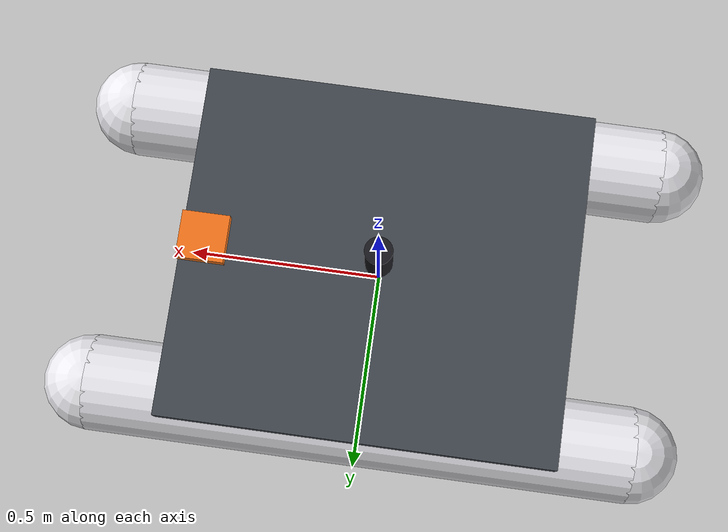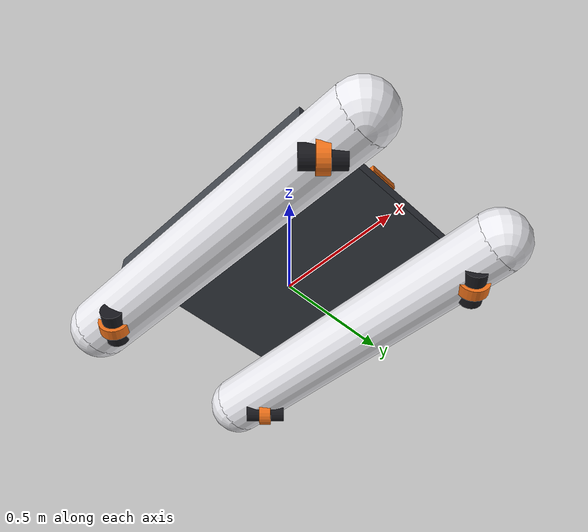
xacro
<?xml version="1.0"?>
<robot xmlns:xacro="http://www.ros.org/wiki/xacro" name="roboboat">

  <!-- Off by default: rendering a camera costs far more than the lidar, and
       nothing in the navigation stack consumes it. Turn it on only when you
       want footage of a run as Gazebo draws it. -->
  <xacro:arg name="chase_camera" default="false"/>

  <!-- ============================ parameters ============================ -->
  <xacro:property name="hull_length"      value="1.40"/>
  <xacro:property name="hull_radius"      value="0.125"/>
  <xacro:property name="hull_separation"  value="0.75"/>   <!-- y, centre-to-centre -->
  <xacro:property name="deck_length"      value="1.00"/>
  <xacro:property name="deck_width"       value="0.90"/>
  <xacro:property name="deck_thickness"   value="0.06"/>
  <xacro:property name="deck_z"           value="0.16"/>

  <xacro:property name="mast_height"      value="0.18"/>
  <xacro:property name="lidar_z"          value="0.35"/>
  <xacro:property name="imu_z"            value="0.20"/>
  <xacro:property name="gps_z"            value="0.40"/>

  <!-- Thruster mount geometry. Must match boat_params.yaml. -->
  <xacro:property name="thr_x"            value="0.55"/>
  <xacro:property name="thr_y"            value="0.40"/>
  <xacro:property name="thr_z"            value="-0.10"/>
  <xacro:property name="thr_len"          value="0.16"/>
  <xacro:property name="thr_radius"       value="0.045"/>

  <xacro:property name="mass"             value="35.0"/>
  <xacro:property name="ixx"              value="4.0"/>
  <xacro:property name="iyy"              value="6.0"/>
  <xacro:property name="izz"              value="9.0"/>

  <xacro:property name="pi_2"             value="1.5707963267948966"/>
  <xacro:property name="deg45"            value="0.7853981633974483"/>
  <xacro:property name="deg135"           value="2.356194490192345"/>

  <!-- ============================= materials ============================ -->
  <material name="hull_white"><color rgba="0.92 0.92 0.94 1.0"/></material>
  <material name="deck_grey"> <color rgba="0.25 0.27 0.30 1.0"/></material>
  <material name="accent">    <color rgba="0.95 0.45 0.10 1.0"/></material>
  <material name="dark">      <color rgba="0.10 0.10 0.12 1.0"/></material>

  <!-- ============================== macros ============================== -->
  <!-- One catamaran hull: capsule-ish (cylinder + two end caps as spheres). -->
  <xacro:macro name="hull" params="name y">
    <visual>
      <origin xyz="0 ${y} 0" rpy="0 ${pi_2} 0"/>
      <geometry><cylinder radius="${hull_radius}" length="${hull_length}"/></geometry>
      <material name="hull_white"/>
    </visual>
    <visual>
      <origin xyz="${hull_length/2} ${y} 0" rpy="0 0 0"/>
      <geometry><sphere radius="${hull_radius}"/></geometry>
      <material name="hull_white"/>
    </visual>
    <visual>
      <origin xyz="${-hull_length/2} ${y} 0" rpy="0 0 0"/>
      <geometry><sphere radius="${hull_radius}"/></geometry>
      <material name="hull_white"/>
    </visual>
  </xacro:macro>

  <!-- One thruster nacelle. 'ang' is the thrust-axis heading in the body
       frame: +x is forward, +y is port. -->
  <xacro:macro name="thruster_visual" params="name x y ang">
    <visual>
      <origin xyz="${x} ${y} ${thr_z}" rpy="0 ${pi_2} ${ang}"/>
      <geometry><cylinder radius="${thr_radius}" length="${thr_len}"/></geometry>
      <material name="dark"/>
    </visual>
    <visual>
      <origin xyz="${x} ${y} ${thr_z}" rpy="0 ${pi_2} ${ang}"/>
      <geometry><cylinder radius="${thr_radius*1.35}" length="${thr_len*0.3}"/></geometry>
      <material name="accent"/>
    </visual>
  </xacro:macro>

  <!-- A frame-only link: exists so robot_state_publisher emits TF for it.
       Tiny inertia keeps sdformat happy when the fixed joint is lumped. -->
  <xacro:macro name="frame_link" params="name xyz rpy:='0 0 0'">
    <link name="${name}">
      <inertial>
        <mass value="1e-5"/>
        <origin xyz="0 0 0"/>
        <inertia ixx="1e-8" ixy="0" ixz="0" iyy="1e-8" iyz="0" izz="1e-8"/>
      </inertial>
    </link>
    <joint name="${name}_joint" type="fixed">
      <parent link="base_link"/>
      <child link="${name}"/>
      <origin xyz="${xyz}" rpy="${rpy}"/>
    </joint>
  </xacro:macro>

  <!-- ============================ base_link ============================= -->
  <link name="base_link">
    <inertial>
      <origin xyz="0 0 0.05" rpy="0 0 0"/>
      <mass value="${mass}"/>
      <inertia ixx="${ixx}" ixy="0.0" ixz="0.0" iyy="${iyy}" iyz="0.0" izz="${izz}"/>
    </inertial>

    <xacro:hull name="port"      y="${ hull_separation/2}"/>
    <xacro:hull name="starboard" y="${-hull_separation/2}"/>

    <!-- deck -->
    <visual>
      <origin xyz="0 0 ${deck_z}" rpy="0 0 0"/>
      <geometry><box size="${deck_length} ${deck_width} ${deck_thickness}"/></geometry>
      <material name="deck_grey"/>
    </visual>

    <!-- sensor mast -->
    <visual>
      <origin xyz="0 0 ${deck_z + mast_height/2}" rpy="0 0 0"/>
      <geometry><cylinder radius="0.035" length="${mast_height}"/></geometry>
      <material name="dark"/>
    </visual>

    <!-- bow marker so heading is obvious in RViz/Gazebo -->
    <visual>
      <origin xyz="${deck_length/2 - 0.06} 0 ${deck_z + deck_thickness}" rpy="0 0 0"/>
      <geometry><box size="0.12 0.12 0.03"/></geometry>
      <material name="accent"/>
    </visual>

    <xacro:thruster_visual name="fl" x="${ thr_x}" y="${ thr_y}" ang="${-deg45}"/>
    <xacro:thruster_visual name="fr" x="${ thr_x}" y="${-thr_y}" ang="${ deg45}"/>
    <xacro:thruster_visual name="rl" x="${-thr_x}" y="${ thr_y}" ang="${ deg45}"/>
    <xacro:thruster_visual name="rr" x="${-thr_x}" y="${-thr_y}" ang="${-deg45}"/>

    <collision>
      <origin xyz="0 0 0.05" rpy="0 0 0"/>
      <geometry>
        <box size="${hull_length} ${hull_separation + 2*hull_radius} 0.35"/>
      </geometry>
    </collision>
  </link>

  <!-- =========================== frame links =========================== -->
  <xacro:frame_link name="lidar_link"     xyz="0 0 ${lidar_z}"/>
  <xacro:frame_link name="imu_link"       xyz="0 0 ${imu_z}"/>
  <xacro:frame_link name="navsat_link"    xyz="0 0 ${gps_z}"/>

  <xacro:frame_link name="thruster_fl_link" xyz="${ thr_x} ${ thr_y} ${thr_z}" rpy="0 0 ${ deg45}"/>
  <xacro:frame_link name="thruster_fr_link" xyz="${ thr_x} ${-thr_y} ${thr_z}" rpy="0 0 ${-deg45}"/>
  <xacro:frame_link name="thruster_rl_link" xyz="${-thr_x} ${ thr_y} ${thr_z}" rpy="0 0 ${-deg45}"/>
  <xacro:frame_link name="thruster_rr_link" xyz="${-thr_x} ${-thr_y} ${thr_z}" rpy="0 0 ${ deg45}"/>

  <!-- ============================== Gazebo ============================= -->
  <gazebo reference="base_link">
    <!-- No gravity: the hull is held at the waterline by construction, which
         removes the entire buoyancy/settling problem and lets us run with a
         large physics step. -->
    <gravity>false</gravity>

    <sensor name="lidar" type="gpu_lidar">
      <pose>0 0 ${lidar_z} 0 0 0</pose>
      <topic>lidar/scan</topic>
      <gz_frame_id>lidar_link</gz_frame_id>
      <update_rate>15</update_rate>
      <always_on>1</always_on>
      <visualize>false</visualize>
      <lidar>
        <scan>
          <horizontal>
            <samples>640</samples>
            <resolution>1</resolution>
            <min_angle>-3.14159</min_angle>
            <max_angle>3.14159</max_angle>
          </horizontal>
          <vertical>
            <samples>1</samples>
            <resolution>1</resolution>
            <min_angle>0</min_angle>
            <max_angle>0</max_angle>
          </vertical>
        </scan>
        <range>
          <!-- Nothing on the boat sits in the z=0.35 scan plane except the
               mast directly beneath the sensor, so min range can stay short. -->
          <min>0.50</min>
          <max>40.0</max>
          <resolution>0.02</resolution>
        </range>
        <noise>
          <type>gaussian</type>
          <mean>0.0</mean>
          <stddev>0.02</stddev>
        </noise>
      </lidar>
    </sensor>

    <sensor name="imu" type="imu">
      <pose>0 0 ${imu_z} 0 0 0</pose>
      <topic>imu/data</topic>
      <gz_frame_id>imu_link</gz_frame_id>
      <update_rate>50</update_rate>
      <always_on>1</always_on>
    </sensor>

    <xacro:if value="$(arg chase_camera)">
      <!-- Behind and above the transom, looking forward and slightly down:
           the classic follow view, and the only one at which a 1.4 m hull is
           actually legible. -->
      <sensor name="chase" type="camera">
        <pose>-5.5 0 2.6 0 0.30 0</pose>
        <topic>camera/chase</topic>
        <gz_frame_id>base_link</gz_frame_id>
        <update_rate>4</update_rate>
        <always_on>1</always_on>
        <camera>
          <horizontal_fov>1.15</horizontal_fov>
          <image>
            <width>480</width>
            <height>300</height>
            <format>R8G8B8</format>
          </image>
          <clip>
            <near>0.2</near>
            <far>300</far>
          </clip>
        </camera>
      </sensor>
    </xacro:if>

    <sensor name="navsat" type="navsat">
      <pose>0 0 ${gps_z} 0 0 0</pose>
      <topic>navsat/fix</topic>
      <gz_frame_id>navsat_link</gz_frame_id>
      <update_rate>10</update_rate>
      <always_on>1</always_on>
    </sensor>
  </gazebo>

  <gazebo>
    <!-- Body-frame twist command. The surrogate dynamics node is the only
         thing that should ever publish here; Nav2 talks to *that* node, not
         to this topic. -->
    <plugin filename="gz-sim-velocity-control-system"
            name="gz::sim::systems::VelocityControl">
      <topic>/model/roboboat/cmd_vel</topic>
    </plugin>

    <plugin filename="gz-sim-odometry-publisher-system"
            name="gz::sim::systems::OdometryPublisher">
      <odom_frame>odom</odom_frame>
      <robot_base_frame>base_link</robot_base_frame>
      <odom_publish_frequency>50</odom_publish_frequency>
      <dimensions>2</dimensions>
      <odom_topic>/model/roboboat/odometry</odom_topic>
      <tf_topic>/model/roboboat/pose</tf_topic>
    </plugin>
  </gazebo>

</robot>
